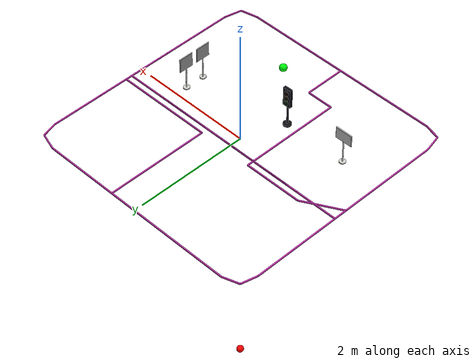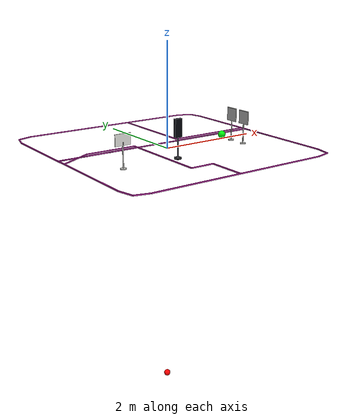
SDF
<sdf version="1.7">
 <world name="autonomous_map_3d_world">
  <model name="traffic_light_lower_island">
   <static>1</static>
   <link name="traffic_light_link">
    <visual name="base_visual">
     <pose>0 0 0.015 0 -0 0</pose>
     <geometry><cylinder><radius>0.07</radius><length>0.03</length></cylinder></geometry>
     <material><ambient>0.03 0.03 0.04 1</ambient><diffuse>0.04 0.04 0.05 1</diffuse></material>
    </visual>
    <visual name="pole_visual">
     <pose>0 0 0.25 0 -0 0</pose>
     <geometry><cylinder><radius>0.016</radius><length>0.47</length></cylinder></geometry>
     <material><ambient>0.08 0.08 0.1 1</ambient><diffuse>0.1 0.1 0.13 1</diffuse></material>
    </visual>
    <visual name="housing_visual">
     <pose>0 -0.006 0.565 0 -0 0</pose>
     <geometry><box><size>0.145 0.055 0.34</size></box></geometry>
     <material><ambient>0.02 0.025 0.04 1</ambient><diffuse>0.03 0.035 0.06 1</diffuse></material>
    </visual>
    <visual name="red_lens_visual">
     <pose>0 -0.038 0.66 0 -0 0</pose>
     <geometry><sphere><radius>0.043</radius></sphere></geometry>
     <material>
      <ambient>0.035 0.002 0.002 1</ambient>
      <diffuse>0.06 0.004 0.004 1</diffuse>
      <emissive>0 0 0 1</emissive>
     </material>
    </visual>
    <visual name="yellow_lens_visual">
     <pose>0 -0.038 0.565 0 -0 0</pose>
     <geometry><sphere><radius>0.043</radius></sphere></geometry>
     <material>
      <ambient>0.035 0.025 0.002 1</ambient>
      <diffuse>0.06 0.045 0.004 1</diffuse>
      <emissive>0 0 0 1</emissive>
     </material>
    </visual>
    <visual name="green_lens_visual">
     <pose>0 -0.038 0.47 0 -0 0</pose>
     <geometry><sphere><radius>0.043</radius></sphere></geometry>
     <material>
      <ambient>0.002 0.04 0.004 1</ambient>
      <diffuse>0.004 0.078 0.01 1</diffuse>
      <emissive>0 0 0 1</emissive>
     </material>
    </visual>
   </link>
   <pose>-0.281200 -0.731200 0.000000 0.000000 -0.000000 3.141593</pose>
  </model>
  <model name="traffic_light_top_island_red_active_lamp">
   <static>0</static>
   <link name="lamp_link">
    <gravity>0</gravity>
    <visual name="lamp_visual">
     <geometry><sphere><radius>0.065</radius></sphere></geometry>
     <material><ambient>1 0 0 1</ambient><diffuse>1 0 0 1</diffuse><emissive>0.0313726 0 0 1</emissive></material>
    </visual>
    <kinematic>1</kinematic>
    <inertial>
     <inertia><ixx>1</ixx><ixy>0</ixy><ixz>0</ixz><iyy>1</iyy><iyz>0</iyz><izz>1</izz></inertia>
     <mass>1</mass>
    </inertial>
   </link>
   <pose>-0.000000 0.000000 -5.000000 0.000000 -0.000000 3.141593</pose>
  </model>
  <model name="traffic_light_top_island_yellow_active_lamp">
   <static>0</static>
   <link name="lamp_link">
    <gravity>0</gravity>
    <visual name="lamp_visual">
     <geometry><sphere><radius>0.065</radius></sphere></geometry>
     <material>
      <ambient>1 0.72 0 1</ambient>
      <diffuse>1 0.72 0 1</diffuse>
      <emissive>0.0313726 0.0203922 0 1</emissive>
     </material>
    </visual>
    <kinematic>1</kinematic>
    <inertial>
     <inertia><ixx>1</ixx><ixy>0</ixy><ixz>0</ixz><iyy>1</iyy><iyz>0</iyz><izz>1</izz></inertia>
     <mass>1</mass>
    </inertial>
   </link>
   <pose>-0.000000 0.000000 -5.000000 0.000000 -0.000000 3.141593</pose>
  </model>
  <model name="traffic_light_lower_island_red_active_lamp">
   <static>0</static>
   <link name="lamp_link">
    <gravity>0</gravity>
    <visual name="lamp_visual">
     <geometry><sphere><radius>0.065</radius></sphere></geometry>
     <material><ambient>1 0 0 1</ambient><diffuse>1 0 0 1</diffuse><emissive>0.0313726 0 0 1</emissive></material>
    </visual>
    <kinematic>1</kinematic>
    <inertial>
     <inertia><ixx>1</ixx><ixy>0</ixy><ixz>0</ixz><iyy>1</iyy><iyz>0</iyz><izz>1</izz></inertia>
     <mass>1</mass>
    </inertial>
   </link>
   <pose>-0.000000 0.000000 -5.000000 0.000000 -0.000000 3.141593</pose>
  </model>
  <model name="traffic_light_lower_island_yellow_active_lamp">
   <static>0</static>
   <link name="lamp_link">
    <gravity>0</gravity>
    <visual name="lamp_visual">
     <geometry><sphere><radius>0.065</radius></sphere></geometry>
     <material>
      <ambient>1 0.72 0 1</ambient>
      <diffuse>1 0.72 0 1</diffuse>
      <emissive>0.0313726 0.0203922 0 1</emissive>
     </material>
    </visual>
    <kinematic>1</kinematic>
    <inertial>
     <inertia><ixx>1</ixx><ixy>0</ixy><ixz>0</ixz><iyy>1</iyy><iyz>0</iyz><izz>1</izz></inertia>
     <mass>1</mass>
    </inertial>
   </link>
   <pose>-0.000000 0.000000 -5.000000 0.000000 -0.000000 3.141593</pose>
  </model>
  <model name="traffic_light_lower_island_green_active_lamp">
   <static>0</static>
   <link name="lamp_link">
    <gravity>0</gravity>
    <visual name="lamp_visual">
     <geometry><sphere><radius>0.065</radius></sphere></geometry>
     <material>
      <ambient>0 1 0.05 1</ambient>
      <diffuse>0 1 0.05 1</diffuse>
      <emissive>0 0.0313726 0.3 1</emissive>
     </material>
    </visual>
    <kinematic>1</kinematic>
    <inertial>
     <inertia><ixx>1</ixx><ixy>0</ixy><ixz>0</ixz><iyy>1</iyy><iyz>0</iyz><izz>1</izz></inertia>
     <mass>1</mass>
    </inertial>
   </link>
   <pose>0.308200 -1.237500 0.470000 0.000000 -0.000000 3.141593</pose>
  </model>
  <model name="sign_speed_limit_left_island">
   <static>1</static>
   <link name="sign_link">
    <visual name="base_visual">
     <pose>0 0 0.01 0 -0 0</pose>
     <geometry><cylinder><radius>0.055</radius><length>0.02</length></cylinder></geometry>
     <material><ambient>0.72 0.72 0.7 1</ambient><diffuse>0.78 0.78 0.76 1</diffuse></material>
    </visual>
    <visual name="pole_visual">
     <pose>0 0 0.245 0 -0 0</pose>
     <geometry><cylinder><radius>0.011</radius><length>0.47</length></cylinder></geometry>
     <material><ambient>0.72 0.72 0.7 1</ambient><diffuse>0.82 0.82 0.8 1</diffuse></material>
    </visual>
    <visual name="back_plate_visual">
     <pose>0 0 0.52 0 -0 0</pose>
     <geometry><box><size>0.26 0.014 0.26</size></box></geometry>
     <material><ambient>0.96 0.96 0.94 1</ambient><diffuse>0.98 0.98 0.96 1</diffuse></material>
    </visual>
    <visual name="sign_face_visual">
     <pose>0 -0.011 0.52 0 -0 0</pose>
     <geometry><box><size>0.246 0.004 0.246</size></box></geometry>
     <material>
      <script>
       <uri>model://road_sign_speed_limit/materials/scripts</uri>
       <uri>model://road_sign_speed_limit/materials/textures</uri>
       <name>RoadSign/SpeedLimit</name>
      </script>
     </material>
    </visual>
   </link>
   <pose>1.406200 -0.567200 0.000000 0.000000 0.000000 -1.570793</pose>
  </model>
  <model name="sign_parking_lower_right_island">
   <static>1</static>
   <link name="sign_link">
    <visual name="base_visual">
     <pose>0 0 0.01 0 -0 0</pose>
     <geometry><cylinder><radius>0.055</radius><length>0.02</length></cylinder></geometry>
     <material><ambient>0.72 0.72 0.7 1</ambient><diffuse>0.78 0.78 0.76 1</diffuse></material>
    </visual>
    <visual name="pole_visual">
     <pose>0 0 0.245 0 -0 0</pose>
     <geometry><cylinder><radius>0.011</radius><length>0.47</length></cylinder></geometry>
     <material><ambient>0.72 0.72 0.7 1</ambient><diffuse>0.82 0.82 0.8 1</diffuse></material>
    </visual>
    <visual name="back_plate_visual">
     <pose>0 0 0.52 0 -0 0</pose>
     <geometry><box><size>0.31 0.014 0.21</size></box></geometry>
     <material><ambient>0.96 0.96 0.94 1</ambient><diffuse>0.98 0.98 0.96 1</diffuse></material>
    </visual>
    <visual name="sign_face_visual">
     <pose>0 -0.011 0.52 0 -0 0</pose>
     <geometry><box><size>0.294 0.004 0.196</size></box></geometry>
     <material>
      <script>
       <uri>model://road_sign_parking/materials/scripts</uri>
       <uri>model://road_sign_parking/materials/textures</uri>
       <name>RoadSign/Parking</name>
      </script>
     </material>
    </visual>
   </link>
   <pose>-1.429700 -0.731200 0.000000 0.000000 -0.000000 3.141593</pose>
  </model>
  <model name="sign_turn_left_lower_left_island">
   <static>1</static>
   <link name="sign_link">
    <visual name="base_visual">
     <pose>0 0 0.01 0 -0 0</pose>
     <geometry><cylinder><radius>0.055</radius><length>0.02</length></cylinder></geometry>
     <material><ambient>0.72 0.72 0.7 1</ambient><diffuse>0.78 0.78 0.76 1</diffuse></material>
    </visual>
    <visual name="pole_visual">
     <pose>0 0 0.245 0 -0 0</pose>
     <geometry><cylinder><radius>0.011</radius><length>0.47</length></cylinder></geometry>
     <material><ambient>0.72 0.72 0.7 1</ambient><diffuse>0.82 0.82 0.8 1</diffuse></material>
    </visual>
    <visual name="back_plate_visual">
     <pose>0 0 0.52 0 -0 0</pose>
     <geometry><box><size>0.26 0.014 0.26</size></box></geometry>
     <material><ambient>0.96 0.96 0.94 1</ambient><diffuse>0.98 0.98 0.96 1</diffuse></material>
    </visual>
    <visual name="sign_face_visual">
     <pose>0 -0.011 0.52 0 -0 0</pose>
     <geometry><box><size>0.246 0.004 0.246</size></box></geometry>
     <material>
      <script>
       <uri>model://road_sign_turn_left/materials/scripts</uri>
       <uri>model://road_sign_turn_left/materials/textures</uri>
       <name>RoadSign/TurnLeft</name>
      </script>
     </material>
    </visual>
   </link>
   <pose>1.406200 -0.215600 0.000000 0.000000 0.000000 -1.570793</pose>
  </model>
  <model name="route_preview_code_transform_magenta">
   <static>1</static>
   <link name="route_preview_link">
    <visual name="route_segment_0000">
     <pose>-0.937500 2.179688 0.040000 0.000000 0.000000 0.000000</pose>
     <geometry><box><size>1.781250 0.020000 0.020000</size></box></geometry>
     <material>
      <script><name>Gazebo/RoutePreviewMagenta</name></script>
      <ambient>1 0 1 1</ambient>
      <diffuse>1 0 1 1</diffuse>
      <emissive>0.7 0 0.7 1</emissive>
     </material>
    </visual>
    <visual name="route_segment_0001">
     <pose>0.210938 2.179688 0.040000 0.000000 0.000000 0.000000</pose>
     <geometry><box><size>0.515625 0.020000 0.020000</size></box></geometry>
     <material>
      <script><name>Gazebo/RoutePreviewMagenta</name></script>
      <ambient>1 0 1 1</ambient>
      <diffuse>1 0 1 1</diffuse>
      <emissive>0.7 0 0.7 1</emissive>
     </material>
    </visual>
    <visual name="route_segment_0002">
     <pose>0.703125 2.179688 0.040000 0.000000 0.000000 0.000000</pose>
     <geometry><box><size>0.468750 0.020000 0.020000</size></box></geometry>
     <material>
      <script><name>Gazebo/RoutePreviewMagenta</name></script>
      <ambient>1 0 1 1</ambient>
      <diffuse>1 0 1 1</diffuse>
      <emissive>0.7 0 0.7 1</emissive>
     </material>
    </visual>
    <visual name="route_segment_0003">
     <pose>1.371094 2.179688 0.040000 0.000000 0.000000 0.000000</pose>
     <geometry><box><size>0.867188 0.020000 0.020000</size></box></geometry>
     <material>
      <script><name>Gazebo/RoutePreviewMagenta</name></script>
      <ambient>1 0 1 1</ambient>
      <diffuse>1 0 1 1</diffuse>
      <emissive>0.7 0 0.7 1</emissive>
     </material>
    </visual>
    <visual name="route_segment_0004">
     <pose>1.957031 2.132812 0.040000 0.000000 0.000000 -0.298499</pose>
     <geometry><box><size>0.318784 0.020000 0.020000</size></box></geometry>
     <material>
      <script><name>Gazebo/RoutePreviewMagenta</name></script>
      <ambient>1 0 1 1</ambient>
      <diffuse>1 0 1 1</diffuse>
      <emissive>0.7 0 0.7 1</emissive>
     </material>
    </visual>
    <visual name="route_segment_0005">
     <pose>2.144531 1.945312 0.040000 0.000000 0.000000 -1.325818</pose>
     <geometry><box><size>0.289906 0.020000 0.020000</size></box></geometry>
     <material>
      <script><name>Gazebo/RoutePreviewMagenta</name></script>
      <ambient>1 0 1 1</ambient>
      <diffuse>1 0 1 1</diffuse>
      <emissive>0.7 0 0.7 1</emissive>
     </material>
    </visual>
    <visual name="route_segment_0006">
     <pose>2.179688 1.347656 0.040000 0.000000 0.000000 -1.570796</pose>
     <geometry><box><size>0.914062 0.020000 0.020000</size></box></geometry>
     <material>
      <script><name>Gazebo/RoutePreviewMagenta</name></script>
      <ambient>1 0 1 1</ambient>
      <diffuse>1 0 1 1</diffuse>
      <emissive>0.7 0 0.7 1</emissive>
     </material>
    </visual>
    <visual name="route_segment_0007">
     <pose>2.179688 0.187500 0.040000 0.000000 0.000000 -1.570796</pose>
     <geometry><box><size>1.406250 0.020000 0.020000</size></box></geometry>
     <material>
      <script><name>Gazebo/RoutePreviewMagenta</name></script>
      <ambient>1 0 1 1</ambient>
      <diffuse>1 0 1 1</diffuse>
      <emissive>0.7 0 0.7 1</emissive>
     </material>
    </visual>
    <visual name="route_segment_0008">
     <pose>2.179688 -1.160156 0.040000 0.000000 0.000000 -1.570796</pose>
     <geometry><box><size>1.289062 0.020000 0.020000</size></box></geometry>
     <material>
      <script><name>Gazebo/RoutePreviewMagenta</name></script>
      <ambient>1 0 1 1</ambient>
      <diffuse>1 0 1 1</diffuse>
      <emissive>0.7 0 0.7 1</emissive>
     </material>
    </visual>
    <visual name="route_segment_0009">
     <pose>2.144531 -1.957031 0.040000 0.000000 0.000000 -1.797595</pose>
     <geometry><box><size>0.312695 0.020000 0.020000</size></box></geometry>
     <material>
      <script><name>Gazebo/RoutePreviewMagenta</name></script>
      <ambient>1 0 1 1</ambient>
      <diffuse>1 0 1 1</diffuse>
      <emissive>0.7 0 0.7 1</emissive>
     </material>
    </visual>
    <visual name="route_segment_0010">
     <pose>1.957031 -2.144531 0.040000 0.000000 0.000000 -2.914794</pose>
     <geometry><box><size>0.312695 0.020000 0.020000</size></box></geometry>
     <material>
      <script><name>Gazebo/RoutePreviewMagenta</name></script>
      <ambient>1 0 1 1</ambient>
      <diffuse>1 0 1 1</diffuse>
      <emissive>0.7 0 0.7 1</emissive>
     </material>
    </visual>
    <visual name="route_segment_0011">
     <pose>1.371094 -2.179688 0.040000 0.000000 0.000000 3.141593</pose>
     <geometry><box><size>0.867188 0.020000 0.020000</size></box></geometry>
     <material>
      <script><name>Gazebo/RoutePreviewMagenta</name></script>
      <ambient>1 0 1 1</ambient>
      <diffuse>1 0 1 1</diffuse>
      <emissive>0.7 0 0.7 1</emissive>
     </material>
    </visual>
    <visual name="route_segment_0012">
     <pose>0.445312 -2.179688 0.040000 0.000000 0.000000 3.141593</pose>
     <geometry><box><size>0.984375 0.020000 0.020000</size></box></geometry>
     <material>
      <script><name>Gazebo/RoutePreviewMagenta</name></script>
      <ambient>1 0 1 1</ambient>
      <diffuse>1 0 1 1</diffuse>
      <emissive>0.7 0 0.7 1</emissive>
     </material>
    </visual>
    <visual name="route_segment_0013">
     <pose>-0.539062 -2.179688 0.040000 0.000000 0.000000 3.141593</pose>
     <geometry><box><size>0.984375 0.020000 0.020000</size></box></geometry>
     <material>
      <script><name>Gazebo/RoutePreviewMagenta</name></script>
      <ambient>1 0 1 1</ambient>
      <diffuse>1 0 1 1</diffuse>
      <emissive>0.7 0 0.7 1</emissive>
     </material>
    </visual>
    <visual name="route_segment_0014">
     <pose>-1.429688 -2.179688 0.040000 0.000000 0.000000 3.141593</pose>
     <geometry><box><size>0.796875 0.020000 0.020000</size></box></geometry>
     <material>
      <script><name>Gazebo/RoutePreviewMagenta</name></script>
      <ambient>1 0 1 1</ambient>
      <diffuse>1 0 1 1</diffuse>
      <emissive>0.7 0 0.7 1</emissive>
     </material>
    </visual>
    <visual name="route_segment_0015">
     <pose>-1.968750 -2.144531 0.040000 0.000000 0.000000 2.896614</pose>
     <geometry><box><size>0.289906 0.020000 0.020000</size></box></geometry>
     <material>
      <script><name>Gazebo/RoutePreviewMagenta</name></script>
      <ambient>1 0 1 1</ambient>
      <diffuse>1 0 1 1</diffuse>
      <emissive>0.7 0 0.7 1</emissive>
     </material>
    </visual>
    <visual name="route_segment_0016">
     <pose>-2.144531 -1.957031 0.040000 0.000000 0.000000 1.797595</pose>
     <geometry><box><size>0.312695 0.020000 0.020000</size></box></geometry>
     <material>
      <script><name>Gazebo/RoutePreviewMagenta</name></script>
      <ambient>1 0 1 1</ambient>
      <diffuse>1 0 1 1</diffuse>
      <emissive>0.7 0 0.7 1</emissive>
     </material>
    </visual>
    <visual name="route_segment_0017">
     <pose>-2.179688 -0.902344 0.040000 0.000000 0.000000 1.570796</pose>
     <geometry><box><size>1.804688 0.020000 0.020000</size></box></geometry>
     <material>
      <script><name>Gazebo/RoutePreviewMagenta</name></script>
      <ambient>1 0 1 1</ambient>
      <diffuse>1 0 1 1</diffuse>
      <emissive>0.7 0 0.7 1</emissive>
     </material>
    </visual>
    <visual name="route_segment_0018">
     <pose>-2.179688 0.117188 0.040000 0.000000 0.000000 1.570796</pose>
     <geometry><box><size>0.234375 0.020000 0.020000</size></box></geometry>
     <material>
      <script><name>Gazebo/RoutePreviewMagenta</name></script>
      <ambient>1 0 1 1</ambient>
      <diffuse>1 0 1 1</diffuse>
      <emissive>0.7 0 0.7 1</emissive>
     </material>
    </visual>
    <visual name="route_segment_0019">
     <pose>-2.179688 0.562500 0.040000 0.000000 0.000000 1.570796</pose>
     <geometry><box><size>0.656250 0.020000 0.020000</size></box></geometry>
     <material>
      <script><name>Gazebo/RoutePreviewMagenta</name></script>
      <ambient>1 0 1 1</ambient>
      <diffuse>1 0 1 1</diffuse>
      <emissive>0.7 0 0.7 1</emissive>
     </material>
    </visual>
    <visual name="route_segment_0020">
     <pose>-2.179688 1.347656 0.040000 0.000000 0.000000 1.570796</pose>
     <geometry><box><size>0.914062 0.020000 0.020000</size></box></geometry>
     <material>
      <script><name>Gazebo/RoutePreviewMagenta</name></script>
      <ambient>1 0 1 1</ambient>
      <diffuse>1 0 1 1</diffuse>
      <emissive>0.7 0 0.7 1</emissive>
     </material>
    </visual>
    <visual name="route_segment_0021">
     <pose>-2.144531 1.945312 0.040000 0.000000 0.000000 1.325818</pose>
     <geometry><box><size>0.289906 0.020000 0.020000</size></box></geometry>
     <material>
      <script><name>Gazebo/RoutePreviewMagenta</name></script>
      <ambient>1 0 1 1</ambient>
      <diffuse>1 0 1 1</diffuse>
      <emissive>0.7 0 0.7 1</emissive>
     </material>
    </visual>
    <visual name="route_segment_0022">
     <pose>-1.968750 2.132812 0.040000 0.000000 0.000000 0.321751</pose>
     <geometry><box><size>0.296464 0.020000 0.020000</size></box></geometry>
     <material>
      <script><name>Gazebo/RoutePreviewMagenta</name></script>
      <ambient>1 0 1 1</ambient>
      <diffuse>1 0 1 1</diffuse>
      <emissive>0.7 0 0.7 1</emissive>
     </material>
    </visual>
    <visual name="route_segment_0023">
     <pose>0.468750 1.699219 0.040000 0.000000 0.000000 -1.570796</pose>
     <geometry><box><size>0.960938 0.020000 0.020000</size></box></geometry>
     <material>
      <script><name>Gazebo/RoutePreviewMagenta</name></script>
      <ambient>1 0 1 1</ambient>
      <diffuse>1 0 1 1</diffuse>
      <emissive>0.7 0 0.7 1</emissive>
     </material>
    </visual>
    <visual name="route_segment_0024">
     <pose>0.468750 0.785156 0.040000 0.000000 0.000000 -1.570796</pose>
     <geometry><box><size>0.867188 0.020000 0.020000</size></box></geometry>
     <material>
      <script><name>Gazebo/RoutePreviewMagenta</name></script>
      <ambient>1 0 1 1</ambient>
      <diffuse>1 0 1 1</diffuse>
      <emissive>0.7 0 0.7 1</emissive>
     </material>
    </visual>
    <visual name="route_segment_0025">
     <pose>1.324219 0.351562 0.040000 0.000000 0.000000 0.000000</pose>
     <geometry><box><size>1.710938 0.020000 0.020000</size></box></geometry>
     <material>
      <script><name>Gazebo/RoutePreviewMagenta</name></script>
      <ambient>1 0 1 1</ambient>
      <diffuse>1 0 1 1</diffuse>
      <emissive>0.7 0 0.7 1</emissive>
     </material>
    </visual>
    <visual name="route_segment_0026">
     <pose>2.179688 -0.082031 0.040000 0.000000 0.000000 -1.570796</pose>
     <geometry><box><size>0.867188 0.020000 0.020000</size></box></geometry>
     <material>
      <script><name>Gazebo/RoutePreviewMagenta</name></script>
      <ambient>1 0 1 1</ambient>
      <diffuse>1 0 1 1</diffuse>
      <emissive>0.7 0 0.7 1</emissive>
     </material>
    </visual>
    <visual name="route_segment_0027">
     <pose>-1.863281 0.234375 0.040000 0.000000 0.000000 0.000000</pose>
     <geometry><box><size>0.632812 0.020000 0.020000</size></box></geometry>
     <material>
      <script><name>Gazebo/RoutePreviewMagenta</name></script>
      <ambient>1 0 1 1</ambient>
      <diffuse>1 0 1 1</diffuse>
      <emissive>0.7 0 0.7 1</emissive>
     </material>
    </visual>
    <visual name="route_segment_0028">
     <pose>-1.031250 0.234375 0.040000 0.000000 0.000000 0.000000</pose>
     <geometry><box><size>1.031250 0.020000 0.020000</size></box></geometry>
     <material>
      <script><name>Gazebo/RoutePreviewMagenta</name></script>
      <ambient>1 0 1 1</ambient>
      <diffuse>1 0 1 1</diffuse>
      <emissive>0.7 0 0.7 1</emissive>
     </material>
    </visual>
    <visual name="route_segment_0029">
     <pose>-0.023438 0.234375 0.040000 0.000000 0.000000 0.000000</pose>
     <geometry><box><size>0.984375 0.020000 0.020000</size></box></geometry>
     <material>
      <script><name>Gazebo/RoutePreviewMagenta</name></script>
      <ambient>1 0 1 1</ambient>
      <diffuse>1 0 1 1</diffuse>
      <emissive>0.7 0 0.7 1</emissive>
     </material>
    </visual>
    <visual name="route_segment_0030">
     <pose>1.324219 0.234375 0.040000 0.000000 0.000000 0.000000</pose>
     <geometry><box><size>1.710938 0.020000 0.020000</size></box></geometry>
     <material>
      <script><name>Gazebo/RoutePreviewMagenta</name></script>
      <ambient>1 0 1 1</ambient>
      <diffuse>1 0 1 1</diffuse>
      <emissive>0.7 0 0.7 1</emissive>
     </material>
    </visual>
    <visual name="route_segment_0031">
     <pose>2.179688 -0.140625 0.040000 0.000000 0.000000 -1.570796</pose>
     <geometry><box><size>0.750000 0.020000 0.020000</size></box></geometry>
     <material>
      <script><name>Gazebo/RoutePreviewMagenta</name></script>
      <ambient>1 0 1 1</ambient>
      <diffuse>1 0 1 1</diffuse>
      <emissive>0.7 0 0.7 1</emissive>
     </material>
    </visual>
    <visual name="route_segment_0032">
     <pose>-0.046875 -1.816406 0.040000 0.000000 0.000000 1.570796</pose>
     <geometry><box><size>0.726562 0.020000 0.020000</size></box></geometry>
     <material>
      <script><name>Gazebo/RoutePreviewMagenta</name></script>
      <ambient>1 0 1 1</ambient>
      <diffuse>1 0 1 1</diffuse>
      <emissive>0.7 0 0.7 1</emissive>
     </material>
    </visual>
    <visual name="route_segment_0033">
     <pose>-0.281250 -1.453125 0.040000 0.000000 0.000000 3.141593</pose>
     <geometry><box><size>0.468750 0.020000 0.020000</size></box></geometry>
     <material>
      <script><name>Gazebo/RoutePreviewMagenta</name></script>
      <ambient>1 0 1 1</ambient>
      <diffuse>1 0 1 1</diffuse>
      <emissive>0.7 0 0.7 1</emissive>
     </material>
    </visual>
    <visual name="route_segment_0034">
     <pose>-0.515625 -0.550781 0.040000 0.000000 0.000000 1.570796</pose>
     <geometry><box><size>1.804688 0.020000 0.020000</size></box></geometry>
     <material>
      <script><name>Gazebo/RoutePreviewMagenta</name></script>
      <ambient>1 0 1 1</ambient>
      <diffuse>1 0 1 1</diffuse>
      <emissive>0.7 0 0.7 1</emissive>
     </material>
    </visual>
    <visual name="route_segment_0035">
     <pose>-1.031250 0.351562 0.040000 0.000000 0.000000 3.141593</pose>
     <geometry><box><size>1.031250 0.020000 0.020000</size></box></geometry>
     <material>
      <script><name>Gazebo/RoutePreviewMagenta</name></script>
      <ambient>1 0 1 1</ambient>
      <diffuse>1 0 1 1</diffuse>
      <emissive>0.7 0 0.7 1</emissive>
     </material>
    </visual>
    <visual name="route_segment_0036">
     <pose>-1.863281 0.175781 0.040000 0.000000 0.000000 -2.634494</pose>
     <geometry><box><size>0.723911 0.020000 0.020000</size></box></geometry>
     <material>
      <script><name>Gazebo/RoutePreviewMagenta</name></script>
      <ambient>1 0 1 1</ambient>
      <diffuse>1 0 1 1</diffuse>
      <emissive>0.7 0 0.7 1</emissive>
     </material>
    </visual>
    <visual name="route_segment_0037">
     <pose>2.179688 -0.140625 0.040000 0.000000 0.000000 1.570796</pose>
     <geometry><box><size>0.750000 0.020000 0.020000</size></box></geometry>
     <material>
      <script><name>Gazebo/RoutePreviewMagenta</name></script>
      <ambient>1 0 1 1</ambient>
      <diffuse>1 0 1 1</diffuse>
      <emissive>0.7 0 0.7 1</emissive>
     </material>
    </visual>
    <visual name="route_segment_0038">
     <pose>1.324219 0.234375 0.040000 0.000000 0.000000 3.141593</pose>
     <geometry><box><size>1.710938 0.020000 0.020000</size></box></geometry>
     <material>
      <script><name>Gazebo/RoutePreviewMagenta</name></script>
      <ambient>1 0 1 1</ambient>
      <diffuse>1 0 1 1</diffuse>
      <emissive>0.7 0 0.7 1</emissive>
     </material>
    </visual>
    <visual name="route_segment_0039">
     <pose>-0.023438 0.234375 0.040000 0.000000 0.000000 3.141593</pose>
     <geometry><box><size>0.984375 0.020000 0.020000</size></box></geometry>
     <material>
      <script><name>Gazebo/RoutePreviewMagenta</name></script>
      <ambient>1 0 1 1</ambient>
      <diffuse>1 0 1 1</diffuse>
      <emissive>0.7 0 0.7 1</emissive>
     </material>
    </visual>
    <visual name="route_segment_0040">
     <pose>-1.031250 0.234375 0.040000 0.000000 0.000000 3.141593</pose>
     <geometry><box><size>1.031250 0.020000 0.020000</size></box></geometry>
     <material>
      <script><name>Gazebo/RoutePreviewMagenta</name></script>
      <ambient>1 0 1 1</ambient>
      <diffuse>1 0 1 1</diffuse>
      <emissive>0.7 0 0.7 1</emissive>
     </material>
    </visual>
    <visual name="route_segment_0041">
     <pose>-1.863281 0.234375 0.040000 0.000000 0.000000 3.141593</pose>
     <geometry><box><size>0.632812 0.020000 0.020000</size></box></geometry>
     <material>
      <script><name>Gazebo/RoutePreviewMagenta</name></script>
      <ambient>1 0 1 1</ambient>
      <diffuse>1 0 1 1</diffuse>
      <emissive>0.7 0 0.7 1</emissive>
     </material>
    </visual>
    <visual name="route_segment_0042">
     <pose>-1.863281 0.234375 0.040000 0.000000 0.000000 0.000000</pose>
     <geometry><box><size>0.632812 0.020000 0.020000</size></box></geometry>
     <material>
      <script><name>Gazebo/RoutePreviewMagenta</name></script>
      <ambient>1 0 1 1</ambient>
      <diffuse>1 0 1 1</diffuse>
      <emissive>0.7 0 0.7 1</emissive>
     </material>
    </visual>
    <visual name="route_segment_0043">
     <pose>-1.031250 0.234375 0.040000 0.000000 0.000000 0.000000</pose>
     <geometry><box><size>1.031250 0.020000 0.020000</size></box></geometry>
     <material>
      <script><name>Gazebo/RoutePreviewMagenta</name></script>
      <ambient>1 0 1 1</ambient>
      <diffuse>1 0 1 1</diffuse>
      <emissive>0.7 0 0.7 1</emissive>
     </material>
    </visual>
    <visual name="route_segment_0044">
     <pose>-0.023438 0.234375 0.040000 0.000000 0.000000 0.000000</pose>
     <geometry><box><size>0.984375 0.020000 0.020000</size></box></geometry>
     <material>
      <script><name>Gazebo/RoutePreviewMagenta</name></script>
      <ambient>1 0 1 1</ambient>
      <diffuse>1 0 1 1</diffuse>
      <emissive>0.7 0 0.7 1</emissive>
     </material>
    </visual>
    <visual name="route_segment_0045">
     <pose>1.324219 0.234375 0.040000 0.000000 0.000000 0.000000</pose>
     <geometry><box><size>1.710938 0.020000 0.020000</size></box></geometry>
     <material>
      <script><name>Gazebo/RoutePreviewMagenta</name></script>
      <ambient>1 0 1 1</ambient>
      <diffuse>1 0 1 1</diffuse>
      <emissive>0.7 0 0.7 1</emissive>
     </material>
    </visual>
    <visual name="route_segment_0046">
     <pose>2.179688 -0.140625 0.040000 0.000000 0.000000 -1.570796</pose>
     <geometry><box><size>0.750000 0.020000 0.020000</size></box></geometry>
     <material>
      <script><name>Gazebo/RoutePreviewMagenta</name></script>
      <ambient>1 0 1 1</ambient>
      <diffuse>1 0 1 1</diffuse>
      <emissive>0.7 0 0.7 1</emissive>
     </material>
    </visual>
   </link>
  </model>
 </world>
</sdf>
